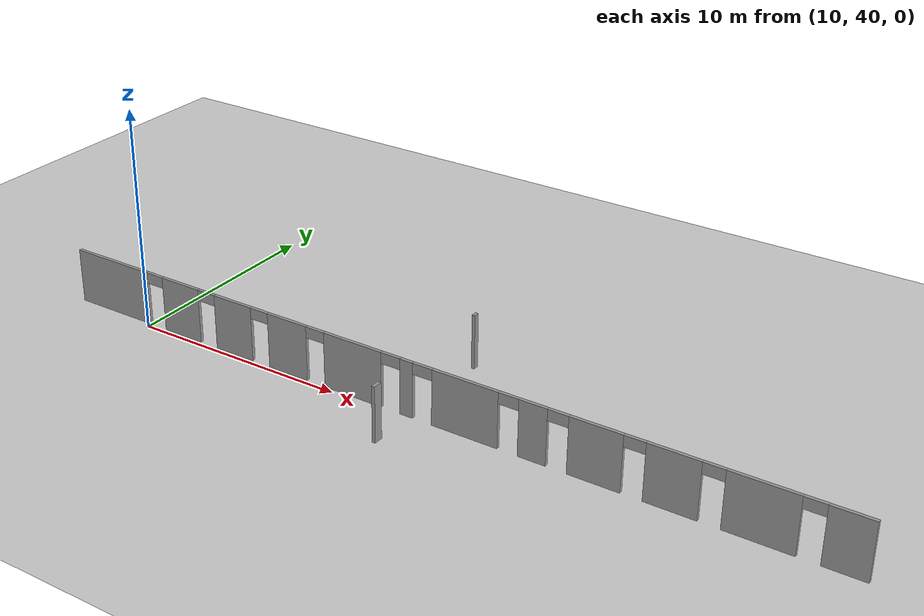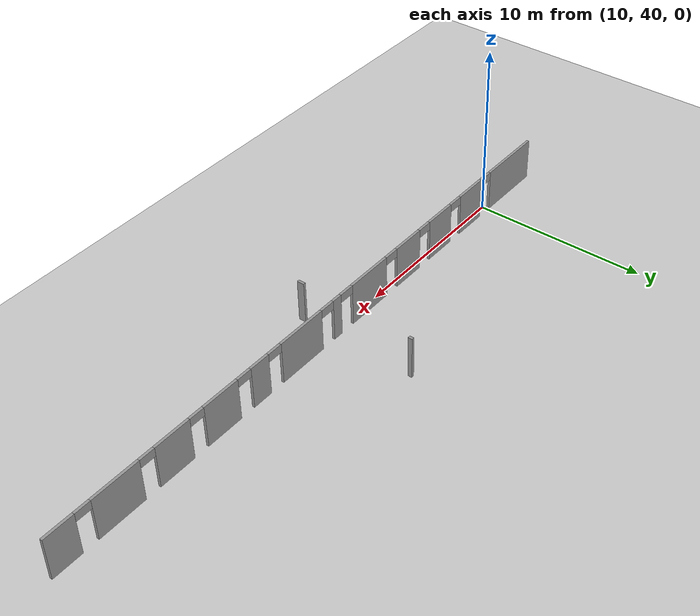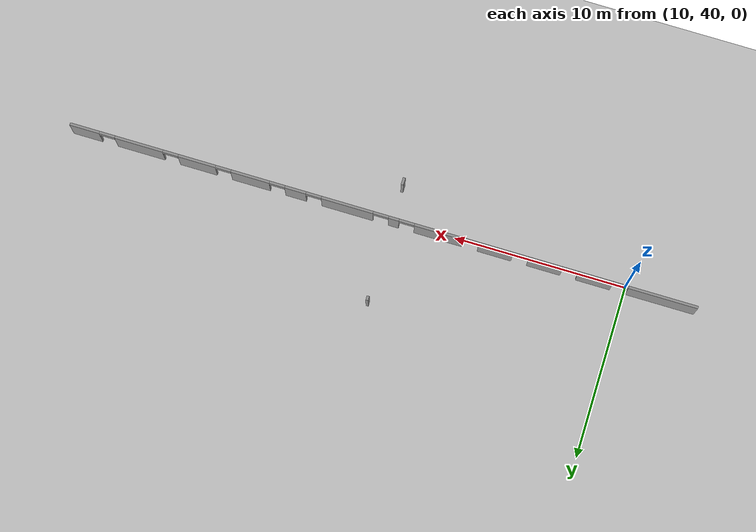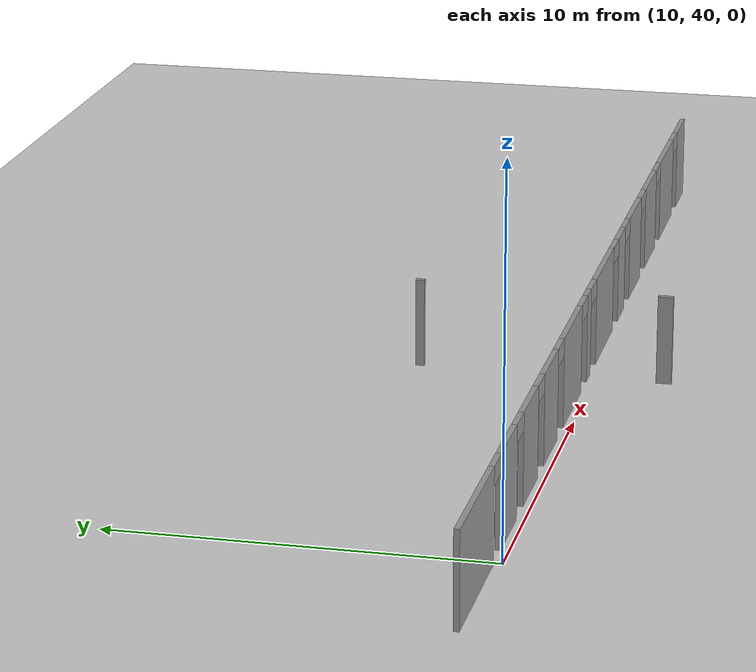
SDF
<sdf version="1.6">
 <world name="default">
  <model name="ground_plane">
   <static>1</static>
   <link name="link">
    <collision name="collision">
     <geometry><plane><normal>0 0 1</normal><size>100 100</size></plane></geometry>
     <surface><friction><ode><mu>100</mu><mu2>50</mu2></ode></friction></surface>
    </collision>
    <visual name="visual">
     <cast_shadows>0</cast_shadows>
     <geometry><plane><normal>0 0 1</normal><size>100 100</size></plane></geometry>
     <material>
      <script><uri>file://media/materials/scripts/gazebo.material</uri><name>Gazebo/Grey</name></script>
     </material>
    </visual>
   </link>
  </model>
  <model name="CVSSP">
   <pose>23.8714 24.094 0 0 -0 0</pose>
   <link name="Wall_330">
    <collision name="Wall_330_Collision">
     <geometry><box><size>0.25 0.15 2.5</size></box></geometry>
     <pose>0 0 1.25 0 -0 0</pose>
    </collision>
    <visual name="Wall_330_Visual">
     <pose>0 0 1.25 0 -0 0</pose>
     <geometry><box><size>0.25 0.15 2.5</size></box></geometry>
     <material>
      <script><uri>file://media/materials/scripts/gazebo.material</uri><name>Gazebo/Grey</name></script>
      <ambient>1 1 1 1</ambient>
     </material>
    </visual>
    <pose>-0.223303 20.8854 0 0 -0 1.5708</pose>
   </link>
   <link name="Wall_620">
    <collision name="Wall_620_Collision">
     <geometry><box><size>0.421785 0.15 2.5</size></box></geometry>
     <pose>0 0 1.25 0 -0 0</pose>
    </collision>
    <visual name="Wall_620_Visual">
     <pose>0 0 1.25 0 -0 0</pose>
     <geometry><box><size>0.421785 0.15 2.5</size></box></geometry>
     <material>
      <script><uri>file://media/materials/scripts/gazebo.material</uri><name>Gazebo/Grey</name></script>
      <ambient>1 1 1 1</ambient>
     </material>
    </visual>
    <pose>-0.261143 14.0219 0 0 0 -1.5708</pose>
   </link>
   <link name="Wall_70">
    <pose>0.280393 16.1874 0 0 -0 3.14159</pose>
    <visual name="Wall_70_Visual_0">
     <pose>-17.3872 0 1.25 0 -0 0</pose>
     <geometry><box><size>1.72569 0.15 2.5</size></box></geometry>
     <material>
      <script><uri>file://media/materials/scripts/gazebo.material</uri><name>Gazebo/Grey</name></script>
      <ambient>0.588235 0.588235 0.588235 1</ambient>
     </material>
    </visual>
    <collision name="Wall_70_Collision_0">
     <geometry><box><size>1.72569 0.15 2.5</size></box></geometry>
     <pose>-17.3872 0 1.25 0 -0 0</pose>
    </collision>
    <visual name="Wall_70_Visual_1">
     <pose>-14.2239 0 1.25 0 -0 0</pose>
     <geometry><box><size>2.8009 0.15 2.5</size></box></geometry>
     <material>
      <script><uri>file://media/materials/scripts/gazebo.material</uri><name>Gazebo/Grey</name></script>
      <ambient>0.588235 0.588235 0.588235 1</ambient>
     </material>
    </visual>
    <collision name="Wall_70_Collision_1">
     <geometry><box><size>2.8009 0.15 2.5</size></box></geometry>
     <pose>-14.2239 0 1.25 0 -0 0</pose>
    </collision>
    <visual name="Wall_70_Visual_2">
     <pose>-10.8352 0 1.25 0 -0 0</pose>
     <geometry><box><size>2.17637 0.15 2.5</size></box></geometry>
     <material>
      <script><uri>file://media/materials/scripts/gazebo.material</uri><name>Gazebo/Grey</name></script>
      <ambient>0.588235 0.588235 0.588235 1</ambient>
     </material>
    </visual>
    <collision name="Wall_70_Collision_2">
     <geometry><box><size>2.17637 0.15 2.5</size></box></geometry>
     <pose>-10.8352 0 1.25 0 -0 0</pose>
    </collision>
    <visual name="Wall_70_Visual_3">
     <pose>-7.72416 0 1.25 0 -0 0</pose>
     <geometry><box><size>2.24576 0.15 2.5</size></box></geometry>
     <material>
      <script><uri>file://media/materials/scripts/gazebo.material</uri><name>Gazebo/Grey</name></script>
      <ambient>0.588235 0.588235 0.588235 1</ambient>
     </material>
    </visual>
    <collision name="Wall_70_Collision_3">
     <geometry><box><size>2.24576 0.15 2.5</size></box></geometry>
     <pose>-7.72416 0 1.25 0 -0 0</pose>
    </collision>
    <visual name="Wall_70_Visual_4">
     <pose>-5.08727 0 1.25 0 -0 0</pose>
     <geometry><box><size>1.22802 0.15 2.5</size></box></geometry>
     <material>
      <script><uri>file://media/materials/scripts/gazebo.material</uri><name>Gazebo/Grey</name></script>
      <ambient>0.588235 0.588235 0.588235 1</ambient>
     </material>
    </visual>
    <collision name="Wall_70_Collision_4">
     <geometry><box><size>1.22802 0.15 2.5</size></box></geometry>
     <pose>-5.08727 0 1.25 0 -0 0</pose>
    </collision>
    <visual name="Wall_70_Visual_5">
     <pose>-2.06873 0 1.25 0 -0 0</pose>
     <geometry><box><size>3.00907 0.15 2.5</size></box></geometry>
     <material>
      <script><uri>file://media/materials/scripts/gazebo.material</uri><name>Gazebo/Grey</name></script>
      <ambient>0.588235 0.588235 0.588235 1</ambient>
     </material>
    </visual>
    <collision name="Wall_70_Collision_5">
     <geometry><box><size>3.00907 0.15 2.5</size></box></geometry>
     <pose>-2.06873 0 1.25 0 -0 0</pose>
    </collision>
    <visual name="Wall_70_Visual_6">
     <pose>0.637556 0 1.25 0 -0 0</pose>
     <geometry><box><size>0.60349 0.15 2.5</size></box></geometry>
     <material>
      <script><uri>file://media/materials/scripts/gazebo.material</uri><name>Gazebo/Grey</name></script>
      <ambient>0.588235 0.588235 0.588235 1</ambient>
     </material>
    </visual>
    <collision name="Wall_70_Collision_6">
     <geometry><box><size>0.60349 0.15 2.5</size></box></geometry>
     <pose>0.637556 0 1.25 0 -0 0</pose>
    </collision>
    <visual name="Wall_70_Visual_7">
     <pose>3.25131 0 1.25 0 -0 0</pose>
     <geometry><box><size>2.82403 0.15 2.5</size></box></geometry>
     <material>
      <script><uri>file://media/materials/scripts/gazebo.material</uri><name>Gazebo/Grey</name></script>
      <ambient>0.588235 0.588235 0.588235 1</ambient>
     </material>
    </visual>
    <collision name="Wall_70_Collision_7">
     <geometry><box><size>2.82403 0.15 2.5</size></box></geometry>
     <pose>3.25131 0 1.25 0 -0 0</pose>
    </collision>
    <visual name="Wall_70_Visual_8">
     <pose>6.55899 0 1.25 0 -0 0</pose>
     <geometry><box><size>1.99133 0.15 2.5</size></box></geometry>
     <material>
      <script><uri>file://media/materials/scripts/gazebo.material</uri><name>Gazebo/Grey</name></script>
      <ambient>0.588235 0.588235 0.588235 1</ambient>
     </material>
    </visual>
    <collision name="Wall_70_Collision_8">
     <geometry><box><size>1.99133 0.15 2.5</size></box></geometry>
     <pose>6.55899 0 1.25 0 -0 0</pose>
    </collision>
    <visual name="Wall_70_Visual_9">
     <pose>9.43875 0 1.25 0 -0 0</pose>
     <geometry><box><size>1.9682 0.15 2.5</size></box></geometry>
     <material>
      <script><uri>file://media/materials/scripts/gazebo.material</uri><name>Gazebo/Grey</name></script>
      <ambient>0.588235 0.588235 0.588235 1</ambient>
     </material>
    </visual>
    <collision name="Wall_70_Collision_9">
     <geometry><box><size>1.9682 0.15 2.5</size></box></geometry>
     <pose>9.43875 0 1.25 0 -0 0</pose>
    </collision>
    <visual name="Wall_70_Visual_10">
     <pose>12.3301 0 1.25 0 -0 0</pose>
     <geometry><box><size>2.01446 0.15 2.5</size></box></geometry>
     <material>
      <script><uri>file://media/materials/scripts/gazebo.material</uri><name>Gazebo/Grey</name></script>
      <ambient>0.588235 0.588235 0.588235 1</ambient>
     </material>
    </visual>
    <collision name="Wall_70_Collision_10">
     <geometry><box><size>2.01446 0.15 2.5</size></box></geometry>
     <pose>12.3301 0 1.25 0 -0 0</pose>
    </collision>
    <visual name="Wall_70_Visual_11">
     <pose>16.2437 0 1.25 0 -0 0</pose>
     <geometry><box><size>4.01269 0.15 2.5</size></box></geometry>
     <material>
      <script><uri>file://media/materials/scripts/gazebo.material</uri><name>Gazebo/Grey</name></script>
      <ambient>0.588235 0.588235 0.588235 1</ambient>
     </material>
    </visual>
    <collision name="Wall_70_Collision_11">
     <geometry><box><size>4.01269 0.15 2.5</size></box></geometry>
     <pose>16.2437 0 1.25 0 -0 0</pose>
    </collision>
    <visual name="Wall_70_Visual_12">
     <pose>-16.0743 0 2.25 0 -0 0</pose>
     <geometry><box><size>0.9 0.15 0.5</size></box></geometry>
     <material>
      <script><uri>file://media/materials/scripts/gazebo.material</uri><name>Gazebo/Grey</name></script>
      <ambient>0.588235 0.588235 0.588235 1</ambient>
     </material>
    </visual>
    <collision name="Wall_70_Collision_12">
     <geometry><box><size>0.9 0.15 0.5</size></box></geometry>
     <pose>-16.0743 0 2.25 0 -0 0</pose>
    </collision>
    <visual name="Wall_70_Visual_13">
     <pose>-12.3734 0 2.25 0 -0 0</pose>
     <geometry><box><size>0.9 0.15 0.5</size></box></geometry>
     <material>
      <script><uri>file://media/materials/scripts/gazebo.material</uri><name>Gazebo/Grey</name></script>
      <ambient>0.588235 0.588235 0.588235 1</ambient>
     </material>
    </visual>
    <collision name="Wall_70_Collision_13">
     <geometry><box><size>0.9 0.15 0.5</size></box></geometry>
     <pose>-12.3734 0 2.25 0 -0 0</pose>
    </collision>
    <visual name="Wall_70_Visual_14">
     <pose>-9.29704 0 2.25 0 -0 0</pose>
     <geometry><box><size>0.9 0.15 0.5</size></box></geometry>
     <material>
      <script><uri>file://media/materials/scripts/gazebo.material</uri><name>Gazebo/Grey</name></script>
      <ambient>0.588235 0.588235 0.588235 1</ambient>
     </material>
    </visual>
    <collision name="Wall_70_Collision_14">
     <geometry><box><size>0.9 0.15 0.5</size></box></geometry>
     <pose>-9.29704 0 2.25 0 -0 0</pose>
    </collision>
    <visual name="Wall_70_Visual_15">
     <pose>-6.15128 0 2.25 0 -0 0</pose>
     <geometry><box><size>0.9 0.15 0.5</size></box></geometry>
     <material>
      <script><uri>file://media/materials/scripts/gazebo.material</uri><name>Gazebo/Grey</name></script>
      <ambient>0.588235 0.588235 0.588235 1</ambient>
     </material>
    </visual>
    <collision name="Wall_70_Collision_15">
     <geometry><box><size>0.9 0.15 0.5</size></box></geometry>
     <pose>-6.15128 0 2.25 0 -0 0</pose>
    </collision>
    <visual name="Wall_70_Visual_16">
     <pose>-4.02326 0 2.25 0 -0 0</pose>
     <geometry><box><size>0.9 0.15 0.5</size></box></geometry>
     <material>
      <script><uri>file://media/materials/scripts/gazebo.material</uri><name>Gazebo/Grey</name></script>
      <ambient>0.588235 0.588235 0.588235 1</ambient>
     </material>
    </visual>
    <collision name="Wall_70_Collision_16">
     <geometry><box><size>0.9 0.15 0.5</size></box></geometry>
     <pose>-4.02326 0 2.25 0 -0 0</pose>
    </collision>
    <visual name="Wall_70_Visual_17">
     <pose>-0.114189 0 2.25 0 -0 0</pose>
     <geometry><box><size>0.9 0.15 0.5</size></box></geometry>
     <material>
      <script><uri>file://media/materials/scripts/gazebo.material</uri><name>Gazebo/Grey</name></script>
      <ambient>0.588235 0.588235 0.588235 1</ambient>
     </material>
    </visual>
    <collision name="Wall_70_Collision_17">
     <geometry><box><size>0.9 0.15 0.5</size></box></geometry>
     <pose>-0.114189 0 2.25 0 -0 0</pose>
    </collision>
    <visual name="Wall_70_Visual_18">
     <pose>1.3893 0 2.25 0 -0 0</pose>
     <geometry><box><size>0.9 0.15 0.5</size></box></geometry>
     <material>
      <script><uri>file://media/materials/scripts/gazebo.material</uri><name>Gazebo/Grey</name></script>
      <ambient>0.588235 0.588235 0.588235 1</ambient>
     </material>
    </visual>
    <collision name="Wall_70_Collision_18">
     <geometry><box><size>0.9 0.15 0.5</size></box></geometry>
     <pose>1.3893 0 2.25 0 -0 0</pose>
    </collision>
    <visual name="Wall_70_Visual_19">
     <pose>5.11333 0 2.25 0 -0 0</pose>
     <geometry><box><size>0.9 0.15 0.5</size></box></geometry>
     <material>
      <script><uri>file://media/materials/scripts/gazebo.material</uri><name>Gazebo/Grey</name></script>
      <ambient>0.588235 0.588235 0.588235 1</ambient>
     </material>
    </visual>
    <collision name="Wall_70_Collision_19">
     <geometry><box><size>0.9 0.15 0.5</size></box></geometry>
     <pose>5.11333 0 2.25 0 -0 0</pose>
    </collision>
    <visual name="Wall_70_Visual_20">
     <pose>8.00465 0 2.25 0 -0 0</pose>
     <geometry><box><size>0.9 0.15 0.5</size></box></geometry>
     <material>
      <script><uri>file://media/materials/scripts/gazebo.material</uri><name>Gazebo/Grey</name></script>
      <ambient>0.588235 0.588235 0.588235 1</ambient>
     </material>
    </visual>
    <collision name="Wall_70_Collision_20">
     <geometry><box><size>0.9 0.15 0.5</size></box></geometry>
     <pose>8.00465 0 2.25 0 -0 0</pose>
    </collision>
    <visual name="Wall_70_Visual_21">
     <pose>10.8728 0 2.25 0 -0 0</pose>
     <geometry><box><size>0.9 0.15 0.5</size></box></geometry>
     <material>
      <script><uri>file://media/materials/scripts/gazebo.material</uri><name>Gazebo/Grey</name></script>
      <ambient>0.588235 0.588235 0.588235 1</ambient>
     </material>
    </visual>
    <collision name="Wall_70_Collision_21">
     <geometry><box><size>0.9 0.15 0.5</size></box></geometry>
     <pose>10.8728 0 2.25 0 -0 0</pose>
    </collision>
    <visual name="Wall_70_Visual_22">
     <pose>13.7873 0 2.25 0 -0 0</pose>
     <geometry><box><size>0.9 0.15 0.5</size></box></geometry>
     <material>
      <script><uri>file://media/materials/scripts/gazebo.material</uri><name>Gazebo/Grey</name></script>
      <ambient>0.588235 0.588235 0.588235 1</ambient>
     </material>
    </visual>
    <collision name="Wall_70_Collision_22">
     <geometry><box><size>0.9 0.15 0.5</size></box></geometry>
     <pose>13.7873 0 2.25 0 -0 0</pose>
    </collision>
   </link>
   <static>1</static>
  </model>
 </world>
</sdf>
